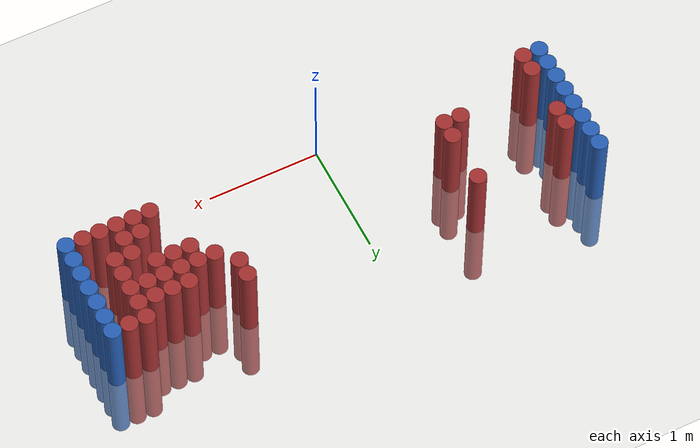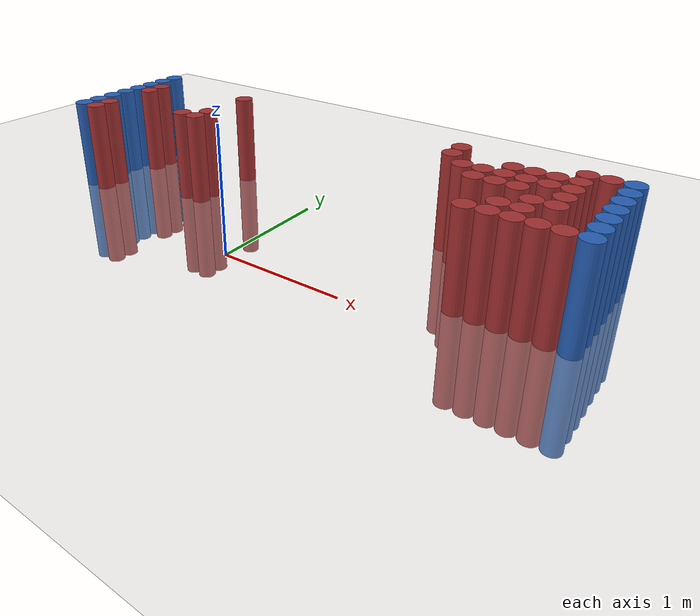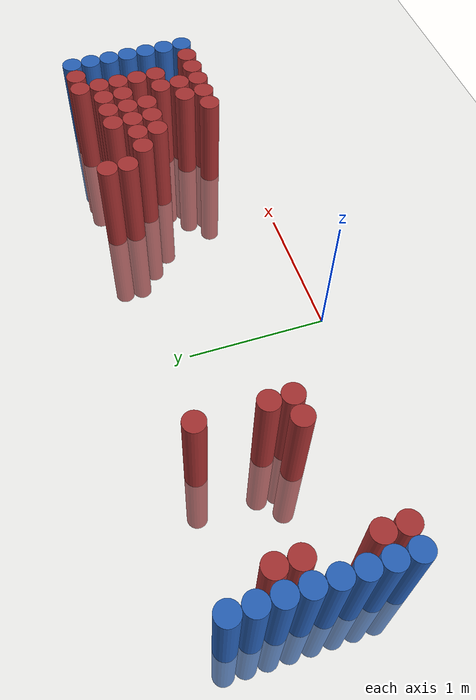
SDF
<sdf version="1.6">
 <world name="default">
  <model name="ground_plane">
   <static>1</static>
   <link name="link">
    <collision name="collision">
     <geometry><plane><normal>0 0 1</normal><size>100 100</size></plane></geometry>
     <surface><friction><ode><mu>100</mu><mu2>50</mu2></ode></friction></surface>
    </collision>
    <visual name="visual">
     <cast_shadows>0</cast_shadows>
     <geometry><plane><normal>0 0 1</normal><size>100 100</size></plane></geometry>
     <material>
      <script><uri>file://media/materials/scripts/gazebo.material</uri><name>Gazebo/Grey</name></script>
     </material>
    </visual>
   </link>
  </model>
  <model name="unit_cylinder_97">
   <static>1</static>
   <pose>-1.925000 0.325000 0.000000 0.000000 0.000000 0.000000</pose>
   <link name="link">
    <inertial>
     <mass>1</mass>
     <inertia><ixx>0.145833</ixx><ixy>0</ixy><ixz>0</ixz><iyy>0.145833</iyy><iyz>0</iyz><izz>0.125</izz></inertia>
    </inertial>
    <collision name="collision">
     <geometry><cylinder><radius>0.075000</radius><length>1.5</length></cylinder></geometry>
    </collision>
    <visual name="visual">
     <geometry><cylinder><radius>0.075000</radius><length>1.5</length></cylinder></geometry>
     <material>
      <ambient>0.152000 0.379000 0.720000 1</ambient>
      <diffuse>0.152000 0.379000 0.720000 1</diffuse>
     </material>
     <material>
      <script><name>Gazebo/Grey</name><uri>file://media/materials/scripts/gazebo.material</uri></script>
     </material>
    </visual>
   </link>
  </model>
  <model name="unit_cylinder_98">
   <static>1</static>
   <pose>-1.925000 0.475000 0.000000 0.000000 0.000000 0.000000</pose>
   <link name="link">
    <inertial>
     <mass>1</mass>
     <inertia><ixx>0.145833</ixx><ixy>0</ixy><ixz>0</ixz><iyy>0.145833</iyy><iyz>0</iyz><izz>0.125</izz></inertia>
    </inertial>
    <collision name="collision">
     <geometry><cylinder><radius>0.075000</radius><length>1.5</length></cylinder></geometry>
    </collision>
    <visual name="visual">
     <geometry><cylinder><radius>0.075000</radius><length>1.5</length></cylinder></geometry>
     <material>
      <ambient>0.152000 0.379000 0.720000 1</ambient>
      <diffuse>0.152000 0.379000 0.720000 1</diffuse>
     </material>
     <material>
      <script><name>Gazebo/Grey</name><uri>file://media/materials/scripts/gazebo.material</uri></script>
     </material>
    </visual>
   </link>
  </model>
  <model name="unit_cylinder_99">
   <static>1</static>
   <pose>-1.925000 0.625000 0.000000 0.000000 0.000000 0.000000</pose>
   <link name="link">
    <inertial>
     <mass>1</mass>
     <inertia><ixx>0.145833</ixx><ixy>0</ixy><ixz>0</ixz><iyy>0.145833</iyy><iyz>0</iyz><izz>0.125</izz></inertia>
    </inertial>
    <collision name="collision">
     <geometry><cylinder><radius>0.075000</radius><length>1.5</length></cylinder></geometry>
    </collision>
    <visual name="visual">
     <geometry><cylinder><radius>0.075000</radius><length>1.5</length></cylinder></geometry>
     <material>
      <ambient>0.152000 0.379000 0.720000 1</ambient>
      <diffuse>0.152000 0.379000 0.720000 1</diffuse>
     </material>
     <material>
      <script><name>Gazebo/Grey</name><uri>file://media/materials/scripts/gazebo.material</uri></script>
     </material>
    </visual>
   </link>
  </model>
  <model name="unit_cylinder_100">
   <static>1</static>
   <pose>-1.925000 0.775000 0.000000 0.000000 0.000000 0.000000</pose>
   <link name="link">
    <inertial>
     <mass>1</mass>
     <inertia><ixx>0.145833</ixx><ixy>0</ixy><ixz>0</ixz><iyy>0.145833</iyy><iyz>0</iyz><izz>0.125</izz></inertia>
    </inertial>
    <collision name="collision">
     <geometry><cylinder><radius>0.075000</radius><length>1.5</length></cylinder></geometry>
    </collision>
    <visual name="visual">
     <geometry><cylinder><radius>0.075000</radius><length>1.5</length></cylinder></geometry>
     <material>
      <ambient>0.152000 0.379000 0.720000 1</ambient>
      <diffuse>0.152000 0.379000 0.720000 1</diffuse>
     </material>
     <material>
      <script><name>Gazebo/Grey</name><uri>file://media/materials/scripts/gazebo.material</uri></script>
     </material>
    </visual>
   </link>
  </model>
  <model name="unit_cylinder_101">
   <static>1</static>
   <pose>-1.925000 0.925000 0.000000 0.000000 0.000000 0.000000</pose>
   <link name="link">
    <inertial>
     <mass>1</mass>
     <inertia><ixx>0.145833</ixx><ixy>0</ixy><ixz>0</ixz><iyy>0.145833</iyy><iyz>0</iyz><izz>0.125</izz></inertia>
    </inertial>
    <collision name="collision">
     <geometry><cylinder><radius>0.075000</radius><length>1.5</length></cylinder></geometry>
    </collision>
    <visual name="visual">
     <geometry><cylinder><radius>0.075000</radius><length>1.5</length></cylinder></geometry>
     <material>
      <ambient>0.152000 0.379000 0.720000 1</ambient>
      <diffuse>0.152000 0.379000 0.720000 1</diffuse>
     </material>
     <material>
      <script><name>Gazebo/Grey</name><uri>file://media/materials/scripts/gazebo.material</uri></script>
     </material>
    </visual>
   </link>
  </model>
  <model name="unit_cylinder_102">
   <static>1</static>
   <pose>-1.925000 1.075000 0.000000 0.000000 0.000000 0.000000</pose>
   <link name="link">
    <inertial>
     <mass>1</mass>
     <inertia><ixx>0.145833</ixx><ixy>0</ixy><ixz>0</ixz><iyy>0.145833</iyy><iyz>0</iyz><izz>0.125</izz></inertia>
    </inertial>
    <collision name="collision">
     <geometry><cylinder><radius>0.075000</radius><length>1.5</length></cylinder></geometry>
    </collision>
    <visual name="visual">
     <geometry><cylinder><radius>0.075000</radius><length>1.5</length></cylinder></geometry>
     <material>
      <ambient>0.152000 0.379000 0.720000 1</ambient>
      <diffuse>0.152000 0.379000 0.720000 1</diffuse>
     </material>
     <material>
      <script><name>Gazebo/Grey</name><uri>file://media/materials/scripts/gazebo.material</uri></script>
     </material>
    </visual>
   </link>
  </model>
  <model name="unit_cylinder_103">
   <static>1</static>
   <pose>-1.925000 1.225000 0.000000 0.000000 0.000000 0.000000</pose>
   <link name="link">
    <inertial>
     <mass>1</mass>
     <inertia><ixx>0.145833</ixx><ixy>0</ixy><ixz>0</ixz><iyy>0.145833</iyy><iyz>0</iyz><izz>0.125</izz></inertia>
    </inertial>
    <collision name="collision">
     <geometry><cylinder><radius>0.075000</radius><length>1.5</length></cylinder></geometry>
    </collision>
    <visual name="visual">
     <geometry><cylinder><radius>0.075000</radius><length>1.5</length></cylinder></geometry>
     <material>
      <ambient>0.152000 0.379000 0.720000 1</ambient>
      <diffuse>0.152000 0.379000 0.720000 1</diffuse>
     </material>
     <material>
      <script><name>Gazebo/Grey</name><uri>file://media/materials/scripts/gazebo.material</uri></script>
     </material>
    </visual>
   </link>
  </model>
  <model name="unit_cylinder_104">
   <static>1</static>
   <pose>-1.925000 1.375000 0.000000 0.000000 0.000000 0.000000</pose>
   <link name="link">
    <inertial>
     <mass>1</mass>
     <inertia><ixx>0.145833</ixx><ixy>0</ixy><ixz>0</ixz><iyy>0.145833</iyy><iyz>0</iyz><izz>0.125</izz></inertia>
    </inertial>
    <collision name="collision">
     <geometry><cylinder><radius>0.075000</radius><length>1.5</length></cylinder></geometry>
    </collision>
    <visual name="visual">
     <geometry><cylinder><radius>0.075000</radius><length>1.5</length></cylinder></geometry>
     <material>
      <ambient>0.152000 0.379000 0.720000 1</ambient>
      <diffuse>0.152000 0.379000 0.720000 1</diffuse>
     </material>
     <material>
      <script><name>Gazebo/Grey</name><uri>file://media/materials/scripts/gazebo.material</uri></script>
     </material>
    </visual>
   </link>
  </model>
  <model name="unit_cylinder_127">
   <static>1</static>
   <pose>-1.775000 0.325000 0.000000 0.000000 0.000000 0.000000</pose>
   <link name="link">
    <inertial>
     <mass>1</mass>
     <inertia><ixx>0.145833</ixx><ixy>0</ixy><ixz>0</ixz><iyy>0.145833</iyy><iyz>0</iyz><izz>0.125</izz></inertia>
    </inertial>
    <collision name="collision">
     <geometry><cylinder><radius>0.075000</radius><length>1.5</length></cylinder></geometry>
    </collision>
    <visual name="visual">
     <geometry><cylinder><radius>0.075000</radius><length>1.5</length></cylinder></geometry>
     <material>
      <ambient>0.648000 0.192000 0.192000 1</ambient>
      <diffuse>0.648000 0.192000 0.192000 1</diffuse>
     </material>
     <material>
      <script><name>Gazebo/Grey</name><uri>file://media/materials/scripts/gazebo.material</uri></script>
     </material>
    </visual>
   </link>
  </model>
  <model name="unit_cylinder_128">
   <static>1</static>
   <pose>-1.775000 0.475000 0.000000 0.000000 0.000000 0.000000</pose>
   <link name="link">
    <inertial>
     <mass>1</mass>
     <inertia><ixx>0.145833</ixx><ixy>0</ixy><ixz>0</ixz><iyy>0.145833</iyy><iyz>0</iyz><izz>0.125</izz></inertia>
    </inertial>
    <collision name="collision">
     <geometry><cylinder><radius>0.075000</radius><length>1.5</length></cylinder></geometry>
    </collision>
    <visual name="visual">
     <geometry><cylinder><radius>0.075000</radius><length>1.5</length></cylinder></geometry>
     <material>
      <ambient>0.648000 0.192000 0.192000 1</ambient>
      <diffuse>0.648000 0.192000 0.192000 1</diffuse>
     </material>
     <material>
      <script><name>Gazebo/Grey</name><uri>file://media/materials/scripts/gazebo.material</uri></script>
     </material>
    </visual>
   </link>
  </model>
  <model name="unit_cylinder_129">
   <static>1</static>
   <pose>-1.775000 0.925000 0.000000 0.000000 0.000000 0.000000</pose>
   <link name="link">
    <inertial>
     <mass>1</mass>
     <inertia><ixx>0.145833</ixx><ixy>0</ixy><ixz>0</ixz><iyy>0.145833</iyy><iyz>0</iyz><izz>0.125</izz></inertia>
    </inertial>
    <collision name="collision">
     <geometry><cylinder><radius>0.075000</radius><length>1.5</length></cylinder></geometry>
    </collision>
    <visual name="visual">
     <geometry><cylinder><radius>0.075000</radius><length>1.5</length></cylinder></geometry>
     <material>
      <ambient>0.648000 0.192000 0.192000 1</ambient>
      <diffuse>0.648000 0.192000 0.192000 1</diffuse>
     </material>
     <material>
      <script><name>Gazebo/Grey</name><uri>file://media/materials/scripts/gazebo.material</uri></script>
     </material>
    </visual>
   </link>
  </model>
  <model name="unit_cylinder_130">
   <static>1</static>
   <pose>-1.775000 1.075000 0.000000 0.000000 0.000000 0.000000</pose>
   <link name="link">
    <inertial>
     <mass>1</mass>
     <inertia><ixx>0.145833</ixx><ixy>0</ixy><ixz>0</ixz><iyy>0.145833</iyy><iyz>0</iyz><izz>0.125</izz></inertia>
    </inertial>
    <collision name="collision">
     <geometry><cylinder><radius>0.075000</radius><length>1.5</length></cylinder></geometry>
    </collision>
    <visual name="visual">
     <geometry><cylinder><radius>0.075000</radius><length>1.5</length></cylinder></geometry>
     <material>
      <ambient>0.648000 0.192000 0.192000 1</ambient>
      <diffuse>0.648000 0.192000 0.192000 1</diffuse>
     </material>
     <material>
      <script><name>Gazebo/Grey</name><uri>file://media/materials/scripts/gazebo.material</uri></script>
     </material>
    </visual>
   </link>
  </model>
  <model name="unit_cylinder_167">
   <static>1</static>
   <pose>-1.025000 0.625000 0.000000 0.000000 0.000000 0.000000</pose>
   <link name="link">
    <inertial>
     <mass>1</mass>
     <inertia><ixx>0.145833</ixx><ixy>0</ixy><ixz>0</ixz><iyy>0.145833</iyy><iyz>0</iyz><izz>0.125</izz></inertia>
    </inertial>
    <collision name="collision">
     <geometry><cylinder><radius>0.075000</radius><length>1.5</length></cylinder></geometry>
    </collision>
    <visual name="visual">
     <geometry><cylinder><radius>0.075000</radius><length>1.5</length></cylinder></geometry>
     <material>
      <ambient>0.648000 0.192000 0.192000 1</ambient>
      <diffuse>0.648000 0.192000 0.192000 1</diffuse>
     </material>
     <material>
      <script><name>Gazebo/Grey</name><uri>file://media/materials/scripts/gazebo.material</uri></script>
     </material>
    </visual>
   </link>
  </model>
  <model name="unit_cylinder_172">
   <static>1</static>
   <pose>-0.875000 0.625000 0.000000 0.000000 0.000000 0.000000</pose>
   <link name="link">
    <inertial>
     <mass>1</mass>
     <inertia><ixx>0.145833</ixx><ixy>0</ixy><ixz>0</ixz><iyy>0.145833</iyy><iyz>0</iyz><izz>0.125</izz></inertia>
    </inertial>
    <collision name="collision">
     <geometry><cylinder><radius>0.075000</radius><length>1.5</length></cylinder></geometry>
    </collision>
    <visual name="visual">
     <geometry><cylinder><radius>0.075000</radius><length>1.5</length></cylinder></geometry>
     <material>
      <ambient>0.648000 0.192000 0.192000 1</ambient>
      <diffuse>0.648000 0.192000 0.192000 1</diffuse>
     </material>
     <material>
      <script><name>Gazebo/Grey</name><uri>file://media/materials/scripts/gazebo.material</uri></script>
     </material>
    </visual>
   </link>
  </model>
  <model name="unit_cylinder_173">
   <static>1</static>
   <pose>-0.875000 0.775000 0.000000 0.000000 0.000000 0.000000</pose>
   <link name="link">
    <inertial>
     <mass>1</mass>
     <inertia><ixx>0.145833</ixx><ixy>0</ixy><ixz>0</ixz><iyy>0.145833</iyy><iyz>0</iyz><izz>0.125</izz></inertia>
    </inertial>
    <collision name="collision">
     <geometry><cylinder><radius>0.075000</radius><length>1.5</length></cylinder></geometry>
    </collision>
    <visual name="visual">
     <geometry><cylinder><radius>0.075000</radius><length>1.5</length></cylinder></geometry>
     <material>
      <ambient>0.648000 0.192000 0.192000 1</ambient>
      <diffuse>0.648000 0.192000 0.192000 1</diffuse>
     </material>
     <material>
      <script><name>Gazebo/Grey</name><uri>file://media/materials/scripts/gazebo.material</uri></script>
     </material>
    </visual>
   </link>
  </model>
  <model name="unit_cylinder_174">
   <static>1</static>
   <pose>-0.875000 1.225000 0.000000 0.000000 0.000000 0.000000</pose>
   <link name="link">
    <inertial>
     <mass>1</mass>
     <inertia><ixx>0.145833</ixx><ixy>0</ixy><ixz>0</ixz><iyy>0.145833</iyy><iyz>0</iyz><izz>0.125</izz></inertia>
    </inertial>
    <collision name="collision">
     <geometry><cylinder><radius>0.075000</radius><length>1.5</length></cylinder></geometry>
    </collision>
    <visual name="visual">
     <geometry><cylinder><radius>0.075000</radius><length>1.5</length></cylinder></geometry>
     <material>
      <ambient>0.648000 0.192000 0.192000 1</ambient>
      <diffuse>0.648000 0.192000 0.192000 1</diffuse>
     </material>
     <material>
      <script><name>Gazebo/Grey</name><uri>file://media/materials/scripts/gazebo.material</uri></script>
     </material>
    </visual>
   </link>
  </model>
  <model name="unit_cylinder_208">
   <static>1</static>
   <pose>1.225000 1.075000 0.000000 0.000000 0.000000 0.000000</pose>
   <link name="link">
    <inertial>
     <mass>1</mass>
     <inertia><ixx>0.145833</ixx><ixy>0</ixy><ixz>0</ixz><iyy>0.145833</iyy><iyz>0</iyz><izz>0.125</izz></inertia>
    </inertial>
    <collision name="collision">
     <geometry><cylinder><radius>0.075000</radius><length>1.5</length></cylinder></geometry>
    </collision>
    <visual name="visual">
     <geometry><cylinder><radius>0.075000</radius><length>1.5</length></cylinder></geometry>
     <material>
      <ambient>0.648000 0.192000 0.192000 1</ambient>
      <diffuse>0.648000 0.192000 0.192000 1</diffuse>
     </material>
     <material>
      <script><name>Gazebo/Grey</name><uri>file://media/materials/scripts/gazebo.material</uri></script>
     </material>
    </visual>
   </link>
  </model>
  <model name="unit_cylinder_209">
   <static>1</static>
   <pose>1.225000 1.225000 0.000000 0.000000 0.000000 0.000000</pose>
   <link name="link">
    <inertial>
     <mass>1</mass>
     <inertia><ixx>0.145833</ixx><ixy>0</ixy><ixz>0</ixz><iyy>0.145833</iyy><iyz>0</iyz><izz>0.125</izz></inertia>
    </inertial>
    <collision name="collision">
     <geometry><cylinder><radius>0.075000</radius><length>1.5</length></cylinder></geometry>
    </collision>
    <visual name="visual">
     <geometry><cylinder><radius>0.075000</radius><length>1.5</length></cylinder></geometry>
     <material>
      <ambient>0.648000 0.192000 0.192000 1</ambient>
      <diffuse>0.648000 0.192000 0.192000 1</diffuse>
     </material>
     <material>
      <script><name>Gazebo/Grey</name><uri>file://media/materials/scripts/gazebo.material</uri></script>
     </material>
    </visual>
   </link>
  </model>
  <model name="unit_cylinder_210">
   <static>1</static>
   <pose>1.375000 0.925000 0.000000 0.000000 0.000000 0.000000</pose>
   <link name="link">
    <inertial>
     <mass>1</mass>
     <inertia><ixx>0.145833</ixx><ixy>0</ixy><ixz>0</ixz><iyy>0.145833</iyy><iyz>0</iyz><izz>0.125</izz></inertia>
    </inertial>
    <collision name="collision">
     <geometry><cylinder><radius>0.075000</radius><length>1.5</length></cylinder></geometry>
    </collision>
    <visual name="visual">
     <geometry><cylinder><radius>0.075000</radius><length>1.5</length></cylinder></geometry>
     <material>
      <ambient>0.648000 0.192000 0.192000 1</ambient>
      <diffuse>0.648000 0.192000 0.192000 1</diffuse>
     </material>
     <material>
      <script><name>Gazebo/Grey</name><uri>file://media/materials/scripts/gazebo.material</uri></script>
     </material>
    </visual>
   </link>
  </model>
  <model name="unit_cylinder_213">
   <static>1</static>
   <pose>1.525000 0.775000 0.000000 0.000000 0.000000 0.000000</pose>
   <link name="link">
    <inertial>
     <mass>1</mass>
     <inertia><ixx>0.145833</ixx><ixy>0</ixy><ixz>0</ixz><iyy>0.145833</iyy><iyz>0</iyz><izz>0.125</izz></inertia>
    </inertial>
    <collision name="collision">
     <geometry><cylinder><radius>0.075000</radius><length>1.5</length></cylinder></geometry>
    </collision>
    <visual name="visual">
     <geometry><cylinder><radius>0.075000</radius><length>1.5</length></cylinder></geometry>
     <material>
      <ambient>0.648000 0.192000 0.192000 1</ambient>
      <diffuse>0.648000 0.192000 0.192000 1</diffuse>
     </material>
     <material>
      <script><name>Gazebo/Grey</name><uri>file://media/materials/scripts/gazebo.material</uri></script>
     </material>
    </visual>
   </link>
  </model>
  <model name="unit_cylinder_214">
   <static>1</static>
   <pose>1.525000 0.925000 0.000000 0.000000 0.000000 0.000000</pose>
   <link name="link">
    <inertial>
     <mass>1</mass>
     <inertia><ixx>0.145833</ixx><ixy>0</ixy><ixz>0</ixz><iyy>0.145833</iyy><iyz>0</iyz><izz>0.125</izz></inertia>
    </inertial>
    <collision name="collision">
     <geometry><cylinder><radius>0.075000</radius><length>1.5</length></cylinder></geometry>
    </collision>
    <visual name="visual">
     <geometry><cylinder><radius>0.075000</radius><length>1.5</length></cylinder></geometry>
     <material>
      <ambient>0.648000 0.192000 0.192000 1</ambient>
      <diffuse>0.648000 0.192000 0.192000 1</diffuse>
     </material>
     <material>
      <script><name>Gazebo/Grey</name><uri>file://media/materials/scripts/gazebo.material</uri></script>
     </material>
    </visual>
   </link>
  </model>
  <model name="unit_cylinder_219">
   <static>1</static>
   <pose>1.675000 0.325000 0.000000 0.000000 0.000000 0.000000</pose>
   <link name="link">
    <inertial>
     <mass>1</mass>
     <inertia><ixx>0.145833</ixx><ixy>0</ixy><ixz>0</ixz><iyy>0.145833</iyy><iyz>0</iyz><izz>0.125</izz></inertia>
    </inertial>
    <collision name="collision">
     <geometry><cylinder><radius>0.075000</radius><length>1.5</length></cylinder></geometry>
    </collision>
    <visual name="visual">
     <geometry><cylinder><radius>0.075000</radius><length>1.5</length></cylinder></geometry>
     <material>
      <ambient>0.648000 0.192000 0.192000 1</ambient>
      <diffuse>0.648000 0.192000 0.192000 1</diffuse>
     </material>
     <material>
      <script><name>Gazebo/Grey</name><uri>file://media/materials/scripts/gazebo.material</uri></script>
     </material>
    </visual>
   </link>
  </model>
  <model name="unit_cylinder_220">
   <static>1</static>
   <pose>1.675000 0.775000 0.000000 0.000000 0.000000 0.000000</pose>
   <link name="link">
    <inertial>
     <mass>1</mass>
     <inertia><ixx>0.145833</ixx><ixy>0</ixy><ixz>0</ixz><iyy>0.145833</iyy><iyz>0</iyz><izz>0.125</izz></inertia>
    </inertial>
    <collision name="collision">
     <geometry><cylinder><radius>0.075000</radius><length>1.5</length></cylinder></geometry>
    </collision>
    <visual name="visual">
     <geometry><cylinder><radius>0.075000</radius><length>1.5</length></cylinder></geometry>
     <material>
      <ambient>0.648000 0.192000 0.192000 1</ambient>
      <diffuse>0.648000 0.192000 0.192000 1</diffuse>
     </material>
     <material>
      <script><name>Gazebo/Grey</name><uri>file://media/materials/scripts/gazebo.material</uri></script>
     </material>
    </visual>
   </link>
  </model>
  <model name="unit_cylinder_221">
   <static>1</static>
   <pose>1.675000 0.925000 0.000000 0.000000 0.000000 0.000000</pose>
   <link name="link">
    <inertial>
     <mass>1</mass>
     <inertia><ixx>0.145833</ixx><ixy>0</ixy><ixz>0</ixz><iyy>0.145833</iyy><iyz>0</iyz><izz>0.125</izz></inertia>
    </inertial>
    <collision name="collision">
     <geometry><cylinder><radius>0.075000</radius><length>1.5</length></cylinder></geometry>
    </collision>
    <visual name="visual">
     <geometry><cylinder><radius>0.075000</radius><length>1.5</length></cylinder></geometry>
     <material>
      <ambient>0.648000 0.192000 0.192000 1</ambient>
      <diffuse>0.648000 0.192000 0.192000 1</diffuse>
     </material>
     <material>
      <script><name>Gazebo/Grey</name><uri>file://media/materials/scripts/gazebo.material</uri></script>
     </material>
    </visual>
   </link>
  </model>
  <model name="unit_cylinder_222">
   <static>1</static>
   <pose>1.675000 1.075000 0.000000 0.000000 0.000000 0.000000</pose>
   <link name="link">
    <inertial>
     <mass>1</mass>
     <inertia><ixx>0.145833</ixx><ixy>0</ixy><ixz>0</ixz><iyy>0.145833</iyy><iyz>0</iyz><izz>0.125</izz></inertia>
    </inertial>
    <collision name="collision">
     <geometry><cylinder><radius>0.075000</radius><length>1.5</length></cylinder></geometry>
    </collision>
    <visual name="visual">
     <geometry><cylinder><radius>0.075000</radius><length>1.5</length></cylinder></geometry>
     <material>
      <ambient>0.648000 0.192000 0.192000 1</ambient>
      <diffuse>0.648000 0.192000 0.192000 1</diffuse>
     </material>
     <material>
      <script><name>Gazebo/Grey</name><uri>file://media/materials/scripts/gazebo.material</uri></script>
     </material>
    </visual>
   </link>
  </model>
  <model name="unit_cylinder_227">
   <static>1</static>
   <pose>1.825000 0.325000 0.000000 0.000000 0.000000 0.000000</pose>
   <link name="link">
    <inertial>
     <mass>1</mass>
     <inertia><ixx>0.145833</ixx><ixy>0</ixy><ixz>0</ixz><iyy>0.145833</iyy><iyz>0</iyz><izz>0.125</izz></inertia>
    </inertial>
    <collision name="collision">
     <geometry><cylinder><radius>0.075000</radius><length>1.5</length></cylinder></geometry>
    </collision>
    <visual name="visual">
     <geometry><cylinder><radius>0.075000</radius><length>1.5</length></cylinder></geometry>
     <material>
      <ambient>0.648000 0.192000 0.192000 1</ambient>
      <diffuse>0.648000 0.192000 0.192000 1</diffuse>
     </material>
     <material>
      <script><name>Gazebo/Grey</name><uri>file://media/materials/scripts/gazebo.material</uri></script>
     </material>
    </visual>
   </link>
  </model>
  <model name="unit_cylinder_228">
   <static>1</static>
   <pose>1.825000 0.475000 0.000000 0.000000 0.000000 0.000000</pose>
   <link name="link">
    <inertial>
     <mass>1</mass>
     <inertia><ixx>0.145833</ixx><ixy>0</ixy><ixz>0</ixz><iyy>0.145833</iyy><iyz>0</iyz><izz>0.125</izz></inertia>
    </inertial>
    <collision name="collision">
     <geometry><cylinder><radius>0.075000</radius><length>1.5</length></cylinder></geometry>
    </collision>
    <visual name="visual">
     <geometry><cylinder><radius>0.075000</radius><length>1.5</length></cylinder></geometry>
     <material>
      <ambient>0.648000 0.192000 0.192000 1</ambient>
      <diffuse>0.648000 0.192000 0.192000 1</diffuse>
     </material>
     <material>
      <script><name>Gazebo/Grey</name><uri>file://media/materials/scripts/gazebo.material</uri></script>
     </material>
    </visual>
   </link>
  </model>
  <model name="unit_cylinder_229">
   <static>1</static>
   <pose>1.825000 0.775000 0.000000 0.000000 0.000000 0.000000</pose>
   <link name="link">
    <inertial>
     <mass>1</mass>
     <inertia><ixx>0.145833</ixx><ixy>0</ixy><ixz>0</ixz><iyy>0.145833</iyy><iyz>0</iyz><izz>0.125</izz></inertia>
    </inertial>
    <collision name="collision">
     <geometry><cylinder><radius>0.075000</radius><length>1.5</length></cylinder></geometry>
    </collision>
    <visual name="visual">
     <geometry><cylinder><radius>0.075000</radius><length>1.5</length></cylinder></geometry>
     <material>
      <ambient>0.648000 0.192000 0.192000 1</ambient>
      <diffuse>0.648000 0.192000 0.192000 1</diffuse>
     </material>
     <material>
      <script><name>Gazebo/Grey</name><uri>file://media/materials/scripts/gazebo.material</uri></script>
     </material>
    </visual>
   </link>
  </model>
  <model name="unit_cylinder_230">
   <static>1</static>
   <pose>1.825000 0.925000 0.000000 0.000000 0.000000 0.000000</pose>
   <link name="link">
    <inertial>
     <mass>1</mass>
     <inertia><ixx>0.145833</ixx><ixy>0</ixy><ixz>0</ixz><iyy>0.145833</iyy><iyz>0</iyz><izz>0.125</izz></inertia>
    </inertial>
    <collision name="collision">
     <geometry><cylinder><radius>0.075000</radius><length>1.5</length></cylinder></geometry>
    </collision>
    <visual name="visual">
     <geometry><cylinder><radius>0.075000</radius><length>1.5</length></cylinder></geometry>
     <material>
      <ambient>0.648000 0.192000 0.192000 1</ambient>
      <diffuse>0.648000 0.192000 0.192000 1</diffuse>
     </material>
     <material>
      <script><name>Gazebo/Grey</name><uri>file://media/materials/scripts/gazebo.material</uri></script>
     </material>
    </visual>
   </link>
  </model>
  <model name="unit_cylinder_231">
   <static>1</static>
   <pose>1.825000 1.075000 0.000000 0.000000 0.000000 0.000000</pose>
   <link name="link">
    <inertial>
     <mass>1</mass>
     <inertia><ixx>0.145833</ixx><ixy>0</ixy><ixz>0</ixz><iyy>0.145833</iyy><iyz>0</iyz><izz>0.125</izz></inertia>
    </inertial>
    <collision name="collision">
     <geometry><cylinder><radius>0.075000</radius><length>1.5</length></cylinder></geometry>
    </collision>
    <visual name="visual">
     <geometry><cylinder><radius>0.075000</radius><length>1.5</length></cylinder></geometry>
     <material>
      <ambient>0.648000 0.192000 0.192000 1</ambient>
      <diffuse>0.648000 0.192000 0.192000 1</diffuse>
     </material>
     <material>
      <script><name>Gazebo/Grey</name><uri>file://media/materials/scripts/gazebo.material</uri></script>
     </material>
    </visual>
   </link>
  </model>
  <model name="unit_cylinder_237">
   <static>1</static>
   <pose>1.975000 0.325000 0.000000 0.000000 0.000000 0.000000</pose>
   <link name="link">
    <inertial>
     <mass>1</mass>
     <inertia><ixx>0.145833</ixx><ixy>0</ixy><ixz>0</ixz><iyy>0.145833</iyy><iyz>0</iyz><izz>0.125</izz></inertia>
    </inertial>
    <collision name="collision">
     <geometry><cylinder><radius>0.075000</radius><length>1.5</length></cylinder></geometry>
    </collision>
    <visual name="visual">
     <geometry><cylinder><radius>0.075000</radius><length>1.5</length></cylinder></geometry>
     <material>
      <ambient>0.648000 0.192000 0.192000 1</ambient>
      <diffuse>0.648000 0.192000 0.192000 1</diffuse>
     </material>
     <material>
      <script><name>Gazebo/Grey</name><uri>file://media/materials/scripts/gazebo.material</uri></script>
     </material>
    </visual>
   </link>
  </model>
  <model name="unit_cylinder_238">
   <static>1</static>
   <pose>1.975000 0.475000 0.000000 0.000000 0.000000 0.000000</pose>
   <link name="link">
    <inertial>
     <mass>1</mass>
     <inertia><ixx>0.145833</ixx><ixy>0</ixy><ixz>0</ixz><iyy>0.145833</iyy><iyz>0</iyz><izz>0.125</izz></inertia>
    </inertial>
    <collision name="collision">
     <geometry><cylinder><radius>0.075000</radius><length>1.5</length></cylinder></geometry>
    </collision>
    <visual name="visual">
     <geometry><cylinder><radius>0.075000</radius><length>1.5</length></cylinder></geometry>
     <material>
      <ambient>0.648000 0.192000 0.192000 1</ambient>
      <diffuse>0.648000 0.192000 0.192000 1</diffuse>
     </material>
     <material>
      <script><name>Gazebo/Grey</name><uri>file://media/materials/scripts/gazebo.material</uri></script>
     </material>
    </visual>
   </link>
  </model>
  <model name="unit_cylinder_239">
   <static>1</static>
   <pose>1.975000 0.625000 0.000000 0.000000 0.000000 0.000000</pose>
   <link name="link">
    <inertial>
     <mass>1</mass>
     <inertia><ixx>0.145833</ixx><ixy>0</ixy><ixz>0</ixz><iyy>0.145833</iyy><iyz>0</iyz><izz>0.125</izz></inertia>
    </inertial>
    <collision name="collision">
     <geometry><cylinder><radius>0.075000</radius><length>1.5</length></cylinder></geometry>
    </collision>
    <visual name="visual">
     <geometry><cylinder><radius>0.075000</radius><length>1.5</length></cylinder></geometry>
     <material>
      <ambient>0.648000 0.192000 0.192000 1</ambient>
      <diffuse>0.648000 0.192000 0.192000 1</diffuse>
     </material>
     <material>
      <script><name>Gazebo/Grey</name><uri>file://media/materials/scripts/gazebo.material</uri></script>
     </material>
    </visual>
   </link>
  </model>
  <model name="unit_cylinder_240">
   <static>1</static>
   <pose>1.975000 0.925000 0.000000 0.000000 0.000000 0.000000</pose>
   <link name="link">
    <inertial>
     <mass>1</mass>
     <inertia><ixx>0.145833</ixx><ixy>0</ixy><ixz>0</ixz><iyy>0.145833</iyy><iyz>0</iyz><izz>0.125</izz></inertia>
    </inertial>
    <collision name="collision">
     <geometry><cylinder><radius>0.075000</radius><length>1.5</length></cylinder></geometry>
    </collision>
    <visual name="visual">
     <geometry><cylinder><radius>0.075000</radius><length>1.5</length></cylinder></geometry>
     <material>
      <ambient>0.648000 0.192000 0.192000 1</ambient>
      <diffuse>0.648000 0.192000 0.192000 1</diffuse>
     </material>
     <material>
      <script><name>Gazebo/Grey</name><uri>file://media/materials/scripts/gazebo.material</uri></script>
     </material>
    </visual>
   </link>
  </model>
  <model name="unit_cylinder_241">
   <static>1</static>
   <pose>1.975000 1.075000 0.000000 0.000000 0.000000 0.000000</pose>
   <link name="link">
    <inertial>
     <mass>1</mass>
     <inertia><ixx>0.145833</ixx><ixy>0</ixy><ixz>0</ixz><iyy>0.145833</iyy><iyz>0</iyz><izz>0.125</izz></inertia>
    </inertial>
    <collision name="collision">
     <geometry><cylinder><radius>0.075000</radius><length>1.5</length></cylinder></geometry>
    </collision>
    <visual name="visual">
     <geometry><cylinder><radius>0.075000</radius><length>1.5</length></cylinder></geometry>
     <material>
      <ambient>0.648000 0.192000 0.192000 1</ambient>
      <diffuse>0.648000 0.192000 0.192000 1</diffuse>
     </material>
     <material>
      <script><name>Gazebo/Grey</name><uri>file://media/materials/scripts/gazebo.material</uri></script>
     </material>
    </visual>
   </link>
  </model>
  <model name="unit_cylinder_246">
   <static>1</static>
   <pose>2.125000 0.325000 0.000000 0.000000 0.000000 0.000000</pose>
   <link name="link">
    <inertial>
     <mass>1</mass>
     <inertia><ixx>0.145833</ixx><ixy>0</ixy><ixz>0</ixz><iyy>0.145833</iyy><iyz>0</iyz><izz>0.125</izz></inertia>
    </inertial>
    <collision name="collision">
     <geometry><cylinder><radius>0.075000</radius><length>1.5</length></cylinder></geometry>
    </collision>
    <visual name="visual">
     <geometry><cylinder><radius>0.075000</radius><length>1.5</length></cylinder></geometry>
     <material>
      <ambient>0.648000 0.192000 0.192000 1</ambient>
      <diffuse>0.648000 0.192000 0.192000 1</diffuse>
     </material>
     <material>
      <script><name>Gazebo/Grey</name><uri>file://media/materials/scripts/gazebo.material</uri></script>
     </material>
    </visual>
   </link>
  </model>
  <model name="unit_cylinder_247">
   <static>1</static>
   <pose>2.125000 0.625000 0.000000 0.000000 0.000000 0.000000</pose>
   <link name="link">
    <inertial>
     <mass>1</mass>
     <inertia><ixx>0.145833</ixx><ixy>0</ixy><ixz>0</ixz><iyy>0.145833</iyy><iyz>0</iyz><izz>0.125</izz></inertia>
    </inertial>
    <collision name="collision">
     <geometry><cylinder><radius>0.075000</radius><length>1.5</length></cylinder></geometry>
    </collision>
    <visual name="visual">
     <geometry><cylinder><radius>0.075000</radius><length>1.5</length></cylinder></geometry>
     <material>
      <ambient>0.648000 0.192000 0.192000 1</ambient>
      <diffuse>0.648000 0.192000 0.192000 1</diffuse>
     </material>
     <material>
      <script><name>Gazebo/Grey</name><uri>file://media/materials/scripts/gazebo.material</uri></script>
     </material>
    </visual>
   </link>
  </model>
  <model name="unit_cylinder_248">
   <static>1</static>
   <pose>2.125000 0.775000 0.000000 0.000000 0.000000 0.000000</pose>
   <link name="link">
    <inertial>
     <mass>1</mass>
     <inertia><ixx>0.145833</ixx><ixy>0</ixy><ixz>0</ixz><iyy>0.145833</iyy><iyz>0</iyz><izz>0.125</izz></inertia>
    </inertial>
    <collision name="collision">
     <geometry><cylinder><radius>0.075000</radius><length>1.5</length></cylinder></geometry>
    </collision>
    <visual name="visual">
     <geometry><cylinder><radius>0.075000</radius><length>1.5</length></cylinder></geometry>
     <material>
      <ambient>0.648000 0.192000 0.192000 1</ambient>
      <diffuse>0.648000 0.192000 0.192000 1</diffuse>
     </material>
     <material>
      <script><name>Gazebo/Grey</name><uri>file://media/materials/scripts/gazebo.material</uri></script>
     </material>
    </visual>
   </link>
  </model>
  <model name="unit_cylinder_249">
   <static>1</static>
   <pose>2.125000 0.925000 0.000000 0.000000 0.000000 0.000000</pose>
   <link name="link">
    <inertial>
     <mass>1</mass>
     <inertia><ixx>0.145833</ixx><ixy>0</ixy><ixz>0</ixz><iyy>0.145833</iyy><iyz>0</iyz><izz>0.125</izz></inertia>
    </inertial>
    <collision name="collision">
     <geometry><cylinder><radius>0.075000</radius><length>1.5</length></cylinder></geometry>
    </collision>
    <visual name="visual">
     <geometry><cylinder><radius>0.075000</radius><length>1.5</length></cylinder></geometry>
     <material>
      <ambient>0.648000 0.192000 0.192000 1</ambient>
      <diffuse>0.648000 0.192000 0.192000 1</diffuse>
     </material>
     <material>
      <script><name>Gazebo/Grey</name><uri>file://media/materials/scripts/gazebo.material</uri></script>
     </material>
    </visual>
   </link>
  </model>
  <model name="unit_cylinder_250">
   <static>1</static>
   <pose>2.125000 1.075000 0.000000 0.000000 0.000000 0.000000</pose>
   <link name="link">
    <inertial>
     <mass>1</mass>
     <inertia><ixx>0.145833</ixx><ixy>0</ixy><ixz>0</ixz><iyy>0.145833</iyy><iyz>0</iyz><izz>0.125</izz></inertia>
    </inertial>
    <collision name="collision">
     <geometry><cylinder><radius>0.075000</radius><length>1.5</length></cylinder></geometry>
    </collision>
    <visual name="visual">
     <geometry><cylinder><radius>0.075000</radius><length>1.5</length></cylinder></geometry>
     <material>
      <ambient>0.648000 0.192000 0.192000 1</ambient>
      <diffuse>0.648000 0.192000 0.192000 1</diffuse>
     </material>
     <material>
      <script><name>Gazebo/Grey</name><uri>file://media/materials/scripts/gazebo.material</uri></script>
     </material>
    </visual>
   </link>
  </model>
  <model name="unit_cylinder_251">
   <static>1</static>
   <pose>2.125000 1.225000 0.000000 0.000000 0.000000 0.000000</pose>
   <link name="link">
    <inertial>
     <mass>1</mass>
     <inertia><ixx>0.145833</ixx><ixy>0</ixy><ixz>0</ixz><iyy>0.145833</iyy><iyz>0</iyz><izz>0.125</izz></inertia>
    </inertial>
    <collision name="collision">
     <geometry><cylinder><radius>0.075000</radius><length>1.5</length></cylinder></geometry>
    </collision>
    <visual name="visual">
     <geometry><cylinder><radius>0.075000</radius><length>1.5</length></cylinder></geometry>
     <material>
      <ambient>0.648000 0.192000 0.192000 1</ambient>
      <diffuse>0.648000 0.192000 0.192000 1</diffuse>
     </material>
     <material>
      <script><name>Gazebo/Grey</name><uri>file://media/materials/scripts/gazebo.material</uri></script>
     </material>
    </visual>
   </link>
  </model>
  <model name="unit_cylinder_254">
   <static>1</static>
   <pose>2.275000 0.325000 0.000000 0.000000 0.000000 0.000000</pose>
   <link name="link">
    <inertial>
     <mass>1</mass>
     <inertia><ixx>0.145833</ixx><ixy>0</ixy><ixz>0</ixz><iyy>0.145833</iyy><iyz>0</iyz><izz>0.125</izz></inertia>
    </inertial>
    <collision name="collision">
     <geometry><cylinder><radius>0.075000</radius><length>1.5</length></cylinder></geometry>
    </collision>
    <visual name="visual">
     <geometry><cylinder><radius>0.075000</radius><length>1.5</length></cylinder></geometry>
     <material>
      <ambient>0.648000 0.192000 0.192000 1</ambient>
      <diffuse>0.648000 0.192000 0.192000 1</diffuse>
     </material>
     <material>
      <script><name>Gazebo/Grey</name><uri>file://media/materials/scripts/gazebo.material</uri></script>
     </material>
    </visual>
   </link>
  </model>
  <model name="unit_cylinder_255">
   <static>1</static>
   <pose>2.275000 1.225000 0.000000 0.000000 0.000000 0.000000</pose>
   <link name="link">
    <inertial>
     <mass>1</mass>
     <inertia><ixx>0.145833</ixx><ixy>0</ixy><ixz>0</ixz><iyy>0.145833</iyy><iyz>0</iyz><izz>0.125</izz></inertia>
    </inertial>
    <collision name="collision">
     <geometry><cylinder><radius>0.075000</radius><length>1.5</length></cylinder></geometry>
    </collision>
    <visual name="visual">
     <geometry><cylinder><radius>0.075000</radius><length>1.5</length></cylinder></geometry>
     <material>
      <ambient>0.648000 0.192000 0.192000 1</ambient>
      <diffuse>0.648000 0.192000 0.192000 1</diffuse>
     </material>
     <material>
      <script><name>Gazebo/Grey</name><uri>file://media/materials/scripts/gazebo.material</uri></script>
     </material>
    </visual>
   </link>
  </model>
  <model name="unit_cylinder_271">
   <static>1</static>
   <pose>2.425000 0.325000 0.000000 0.000000 0.000000 0.000000</pose>
   <link name="link">
    <inertial>
     <mass>1</mass>
     <inertia><ixx>0.145833</ixx><ixy>0</ixy><ixz>0</ixz><iyy>0.145833</iyy><iyz>0</iyz><izz>0.125</izz></inertia>
    </inertial>
    <collision name="collision">
     <geometry><cylinder><radius>0.075000</radius><length>1.5</length></cylinder></geometry>
    </collision>
    <visual name="visual">
     <geometry><cylinder><radius>0.075000</radius><length>1.5</length></cylinder></geometry>
     <material>
      <ambient>0.152000 0.379000 0.720000 1</ambient>
      <diffuse>0.152000 0.379000 0.720000 1</diffuse>
     </material>
     <material>
      <script><name>Gazebo/Grey</name><uri>file://media/materials/scripts/gazebo.material</uri></script>
     </material>
    </visual>
   </link>
  </model>
  <model name="unit_cylinder_272">
   <static>1</static>
   <pose>2.425000 0.475000 0.000000 0.000000 0.000000 0.000000</pose>
   <link name="link">
    <inertial>
     <mass>1</mass>
     <inertia><ixx>0.145833</ixx><ixy>0</ixy><ixz>0</ixz><iyy>0.145833</iyy><iyz>0</iyz><izz>0.125</izz></inertia>
    </inertial>
    <collision name="collision">
     <geometry><cylinder><radius>0.075000</radius><length>1.5</length></cylinder></geometry>
    </collision>
    <visual name="visual">
     <geometry><cylinder><radius>0.075000</radius><length>1.5</length></cylinder></geometry>
     <material>
      <ambient>0.152000 0.379000 0.720000 1</ambient>
      <diffuse>0.152000 0.379000 0.720000 1</diffuse>
     </material>
     <material>
      <script><name>Gazebo/Grey</name><uri>file://media/materials/scripts/gazebo.material</uri></script>
     </material>
    </visual>
   </link>
  </model>
  <model name="unit_cylinder_273">
   <static>1</static>
   <pose>2.425000 0.625000 0.000000 0.000000 0.000000 0.000000</pose>
   <link name="link">
    <inertial>
     <mass>1</mass>
     <inertia><ixx>0.145833</ixx><ixy>0</ixy><ixz>0</ixz><iyy>0.145833</iyy><iyz>0</iyz><izz>0.125</izz></inertia>
    </inertial>
    <collision name="collision">
     <geometry><cylinder><radius>0.075000</radius><length>1.5</length></cylinder></geometry>
    </collision>
    <visual name="visual">
     <geometry><cylinder><radius>0.075000</radius><length>1.5</length></cylinder></geometry>
     <material>
      <ambient>0.152000 0.379000 0.720000 1</ambient>
      <diffuse>0.152000 0.379000 0.720000 1</diffuse>
     </material>
     <material>
      <script><name>Gazebo/Grey</name><uri>file://media/materials/scripts/gazebo.material</uri></script>
     </material>
    </visual>
   </link>
  </model>
  <model name="unit_cylinder_274">
   <static>1</static>
   <pose>2.425000 0.775000 0.000000 0.000000 0.000000 0.000000</pose>
   <link name="link">
    <inertial>
     <mass>1</mass>
     <inertia><ixx>0.145833</ixx><ixy>0</ixy><ixz>0</ixz><iyy>0.145833</iyy><iyz>0</iyz><izz>0.125</izz></inertia>
    </inertial>
    <collision name="collision">
     <geometry><cylinder><radius>0.075000</radius><length>1.5</length></cylinder></geometry>
    </collision>
    <visual name="visual">
     <geometry><cylinder><radius>0.075000</radius><length>1.5</length></cylinder></geometry>
     <material>
      <ambient>0.152000 0.379000 0.720000 1</ambient>
      <diffuse>0.152000 0.379000 0.720000 1</diffuse>
     </material>
     <material>
      <script><name>Gazebo/Grey</name><uri>file://media/materials/scripts/gazebo.material</uri></script>
     </material>
    </visual>
   </link>
  </model>
  <model name="unit_cylinder_275">
   <static>1</static>
   <pose>2.425000 0.925000 0.000000 0.000000 0.000000 0.000000</pose>
   <link name="link">
    <inertial>
     <mass>1</mass>
     <inertia><ixx>0.145833</ixx><ixy>0</ixy><ixz>0</ixz><iyy>0.145833</iyy><iyz>0</iyz><izz>0.125</izz></inertia>
    </inertial>
    <collision name="collision">
     <geometry><cylinder><radius>0.075000</radius><length>1.5</length></cylinder></geometry>
    </collision>
    <visual name="visual">
     <geometry><cylinder><radius>0.075000</radius><length>1.5</length></cylinder></geometry>
     <material>
      <ambient>0.152000 0.379000 0.720000 1</ambient>
      <diffuse>0.152000 0.379000 0.720000 1</diffuse>
     </material>
     <material>
      <script><name>Gazebo/Grey</name><uri>file://media/materials/scripts/gazebo.material</uri></script>
     </material>
    </visual>
   </link>
  </model>
  <model name="unit_cylinder_276">
   <static>1</static>
   <pose>2.425000 1.075000 0.000000 0.000000 0.000000 0.000000</pose>
   <link name="link">
    <inertial>
     <mass>1</mass>
     <inertia><ixx>0.145833</ixx><ixy>0</ixy><ixz>0</ixz><iyy>0.145833</iyy><iyz>0</iyz><izz>0.125</izz></inertia>
    </inertial>
    <collision name="collision">
     <geometry><cylinder><radius>0.075000</radius><length>1.5</length></cylinder></geometry>
    </collision>
    <visual name="visual">
     <geometry><cylinder><radius>0.075000</radius><length>1.5</length></cylinder></geometry>
     <material>
      <ambient>0.152000 0.379000 0.720000 1</ambient>
      <diffuse>0.152000 0.379000 0.720000 1</diffuse>
     </material>
     <material>
      <script><name>Gazebo/Grey</name><uri>file://media/materials/scripts/gazebo.material</uri></script>
     </material>
    </visual>
   </link>
  </model>
  <model name="unit_cylinder_277">
   <static>1</static>
   <pose>2.425000 1.225000 0.000000 0.000000 0.000000 0.000000</pose>
   <link name="link">
    <inertial>
     <mass>1</mass>
     <inertia><ixx>0.145833</ixx><ixy>0</ixy><ixz>0</ixz><iyy>0.145833</iyy><iyz>0</iyz><izz>0.125</izz></inertia>
    </inertial>
    <collision name="collision">
     <geometry><cylinder><radius>0.075000</radius><length>1.5</length></cylinder></geometry>
    </collision>
    <visual name="visual">
     <geometry><cylinder><radius>0.075000</radius><length>1.5</length></cylinder></geometry>
     <material>
      <ambient>0.152000 0.379000 0.720000 1</ambient>
      <diffuse>0.152000 0.379000 0.720000 1</diffuse>
     </material>
     <material>
      <script><name>Gazebo/Grey</name><uri>file://media/materials/scripts/gazebo.material</uri></script>
     </material>
    </visual>
   </link>
  </model>
 </world>
</sdf>
